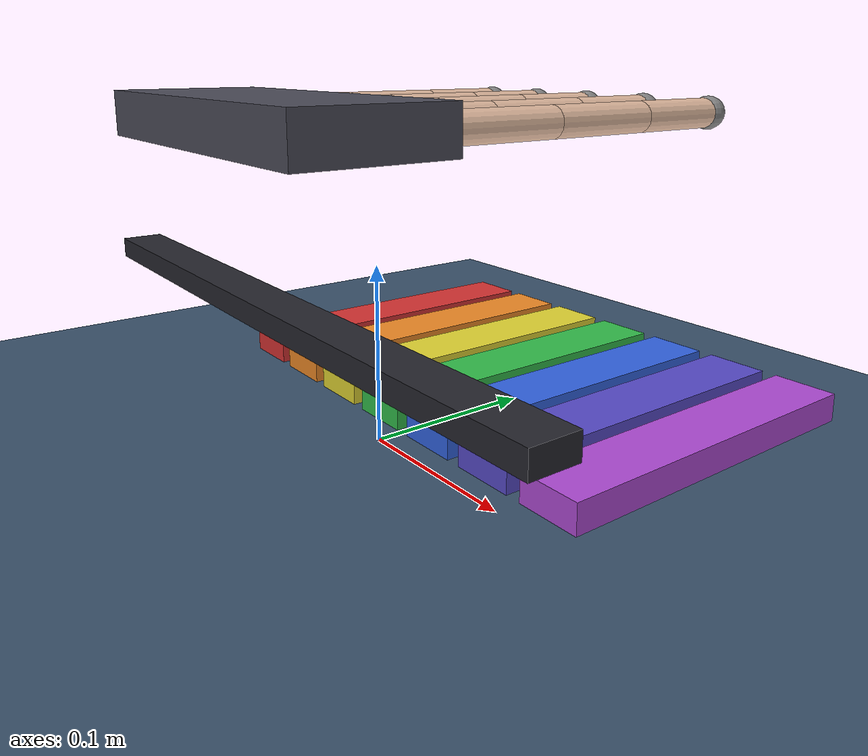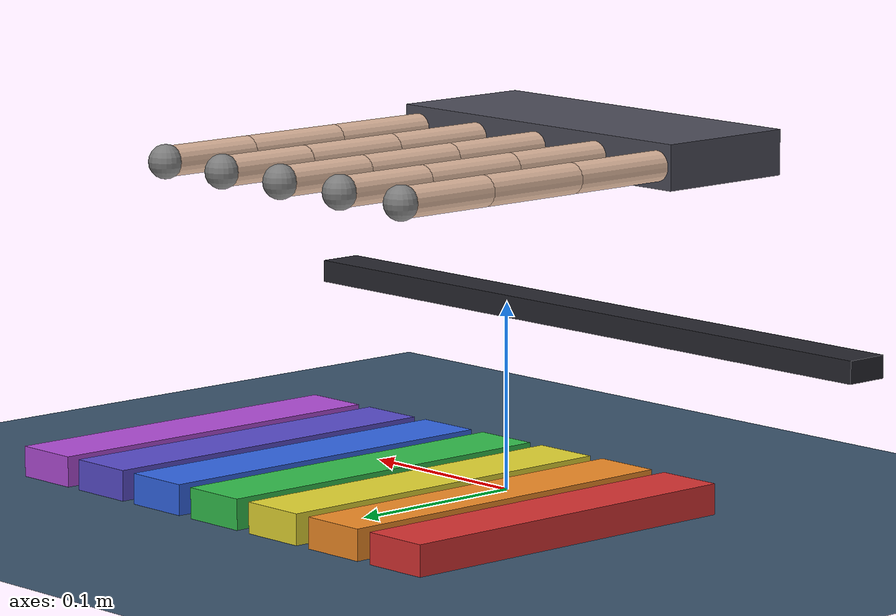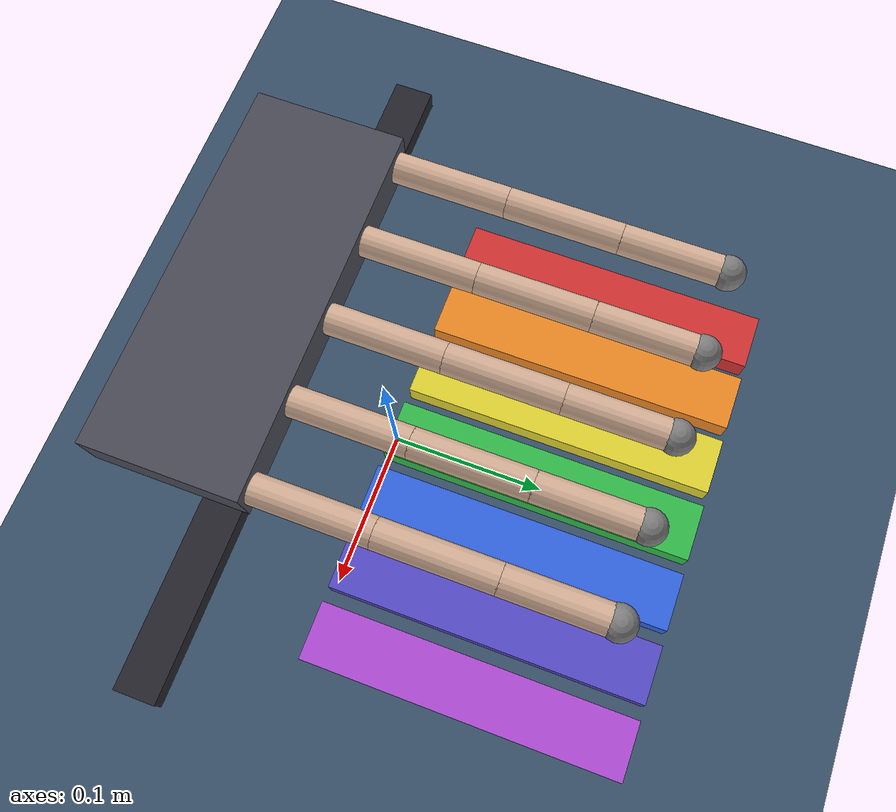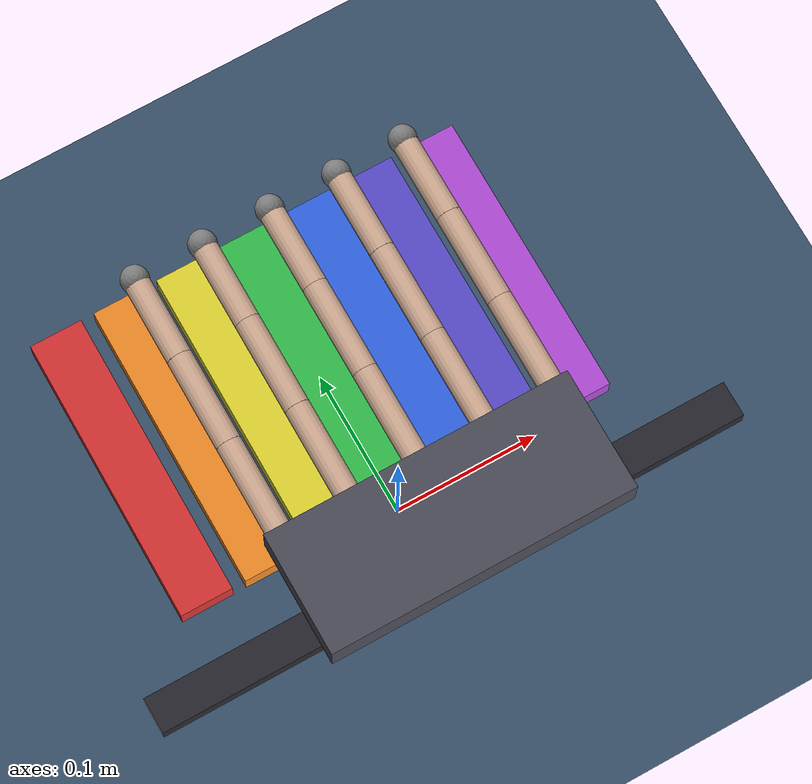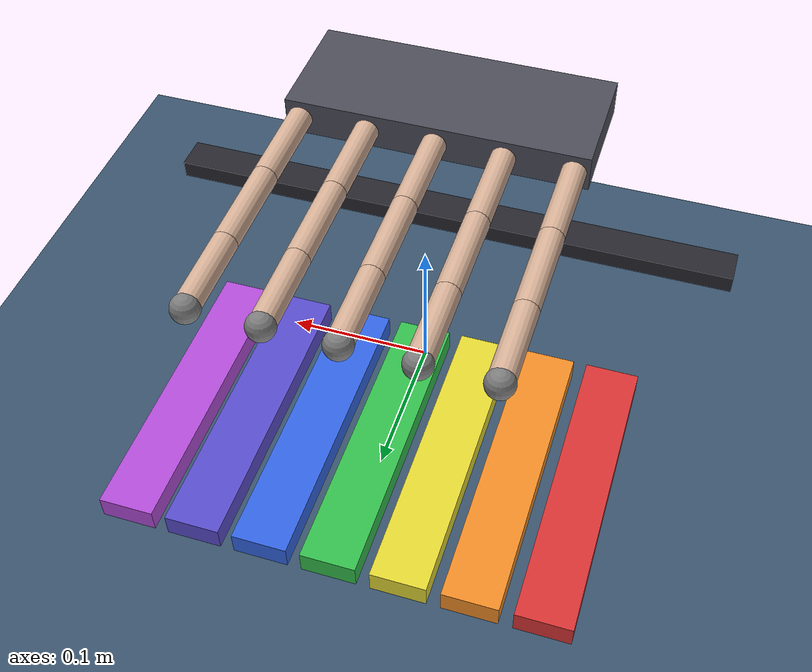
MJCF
<mujoco model="hand_on_piano_v2">
  <compiler angle="radian" autolimits="true"/>

  <option gravity="0 0 -9.81" timestep="0.002" integrator="implicitfast"/>

  <visual>
    <headlight diffuse="0.4 0.4 0.4" ambient="0.3 0.3 0.3"/>
    <global azimuth="120" elevation="-20" offwidth="1280" offheight="720"/>
  </visual>

  <default>
    <!-- finger phalanx links -->
    <default class="phalanx">
      <geom type="capsule" size="0.008" rgba="0.85 0.7 0.6 1"
            friction="1.2 0.02 0.001" condim="4"/>
      <joint type="hinge" axis="1 0 0" range="-1.7 0.3"
             damping="0.05" stiffness="0.3" armature="0.001"/>
    </default>
    <!-- finger position actuators -->
    <default class="finger_act">
      <position kp="3" ctrlrange="-1.7 0.3"/>
    </default>
    <!-- piano keys: hinge that pivots down about its back edge, spring-return -->
    <default class="key">
      <joint type="hinge" axis="1 0 0" pos="0 0 0"
             range="-0.12 0.0" stiffness="40" damping="1.2" armature="0.002"/>
      <geom type="box" friction="1.2 0.02 0.001" condim="4"/>
    </default>
  </default>

  <asset>
    <texture name="grid" type="2d" builtin="checker"
             rgb1="0.2 0.3 0.4" rgb2="0.25 0.35 0.45"
             width="512" height="512"/>
    <material name="grid" texture="grid" texrepeat="8 8"
              reflectance="0.2"/>
    <material name="palm_mat" rgba="0.3 0.3 0.35 1"/>
    <material name="rail_mat" rgba="0.15 0.15 0.18 1"/>
  </asset>

  <worldbody>
    <light name="sun" directional="true" diffuse="0.8 0.8 0.8"
           pos="0 -0.5 1.5" dir="0 0.3 -1"/>

    <camera name="overview" pos="0 0.74 0.5" fovy="58"
            xyaxes="-1 0 0 0 -0.5 0.866"/>

    <geom name="floor" type="plane" size="3 3 0.1" material="grid"/>

    <!-- A thin static rail behind the keys, purely to read as the slide track
         the wrist carriage travels along (visual context for the prismatic
         joint). -->
    <geom name="slide_rail" type="box" pos="0 -0.06 0.085"
          size="0.20 0.012 0.006" material="rail_mat"/>

    <!-- =============== PIANO KEYBOARD (7 keys) =============== -->
    <body name="keyboard" pos="0 0 0">
      <!-- key0 C  red -->
      <body name="key0" pos="-0.135 0 0.02">
        <joint name="key0_joint" class="key"/>
        <geom name="key0_geom" class="key" pos="0 0.1 0" size="0.018 0.1 0.008" rgba="0.85 0.20 0.20 1"/>
        <site name="key0_touch" type="box" pos="0 0.1 0.012" size="0.018 0.1 0.005" rgba="0 0 0 0"/>
      </body>
      <!-- key1 D  orange -->
      <body name="key1" pos="-0.090 0 0.02">
        <joint name="key1_joint" class="key"/>
        <geom name="key1_geom" class="key" pos="0 0.1 0" size="0.018 0.1 0.008" rgba="0.95 0.55 0.15 1"/>
        <site name="key1_touch" type="box" pos="0 0.1 0.012" size="0.018 0.1 0.005" rgba="0 0 0 0"/>
      </body>
      <!-- key2 E  yellow -->
      <body name="key2" pos="-0.045 0 0.02">
        <joint name="key2_joint" class="key"/>
        <geom name="key2_geom" class="key" pos="0 0.1 0" size="0.018 0.1 0.008" rgba="0.90 0.85 0.20 1"/>
        <site name="key2_touch" type="box" pos="0 0.1 0.012" size="0.018 0.1 0.005" rgba="0 0 0 0"/>
      </body>
      <!-- key3 F  green -->
      <body name="key3" pos="0.000 0 0.02">
        <joint name="key3_joint" class="key"/>
        <geom name="key3_geom" class="key" pos="0 0.1 0" size="0.018 0.1 0.008" rgba="0.20 0.75 0.30 1"/>
        <site name="key3_touch" type="box" pos="0 0.1 0.012" size="0.018 0.1 0.005" rgba="0 0 0 0"/>
      </body>
      <!-- key4 G  blue -->
      <body name="key4" pos="0.045 0 0.02">
        <joint name="key4_joint" class="key"/>
        <geom name="key4_geom" class="key" pos="0 0.1 0" size="0.018 0.1 0.008" rgba="0.20 0.40 0.90 1"/>
        <site name="key4_touch" type="box" pos="0 0.1 0.012" size="0.018 0.1 0.005" rgba="0 0 0 0"/>
      </body>
      <!-- key5 A  indigo -->
      <body name="key5" pos="0.090 0 0.02">
        <joint name="key5_joint" class="key"/>
        <geom name="key5_geom" class="key" pos="0 0.1 0" size="0.018 0.1 0.008" rgba="0.35 0.30 0.80 1"/>
        <site name="key5_touch" type="box" pos="0 0.1 0.012" size="0.018 0.1 0.005" rgba="0 0 0 0"/>
      </body>
      <!-- key6 B  violet -->
      <body name="key6" pos="0.135 0 0.02">
        <joint name="key6_joint" class="key"/>
        <geom name="key6_geom" class="key" pos="0 0.1 0" size="0.018 0.1 0.008" rgba="0.70 0.30 0.85 1"/>
        <site name="key6_touch" type="box" pos="0 0.1 0.012" size="0.018 0.1 0.005" rgba="0 0 0 0"/>
      </body>
    </body>

    <!-- =============== DEXTEROUS HAND ON A SLIDING WRIST =============== -->
    <body name="carriage" pos="0 -0.06 0.18">
      <joint name="wrist_slide" type="slide" axis="1 0 0" range="-0.18 0.18"
             damping="6" armature="0.01"/>
      <geom name="palm_geom" type="box" size="0.10 0.04 0.012" material="palm_mat"/>

      <!-- finger 1 (home over key1) -->
      <body name="f1_prox" pos="-0.090 0.04 0">
        <joint name="f1_j1" class="phalanx"/>
        <geom class="phalanx" fromto="0 0 0 0 0.06 0"/>
        <body name="f1_mid" pos="0 0.06 0">
          <joint name="f1_j2" class="phalanx"/>
          <geom class="phalanx" fromto="0 0 0 0 0.06 0"/>
          <body name="f1_dist" pos="0 0.06 0">
            <joint name="f1_j3" class="phalanx"/>
            <geom class="phalanx" fromto="0 0 0 0 0.055 0"/>
            <site name="f1_tip" pos="0 0.055 0" size="0.009"/>
          </body>
        </body>
      </body>

      <!-- finger 2 (home over key2) -->
      <body name="f2_prox" pos="-0.045 0.04 0">
        <joint name="f2_j1" class="phalanx"/>
        <geom class="phalanx" fromto="0 0 0 0 0.06 0"/>
        <body name="f2_mid" pos="0 0.06 0">
          <joint name="f2_j2" class="phalanx"/>
          <geom class="phalanx" fromto="0 0 0 0 0.06 0"/>
          <body name="f2_dist" pos="0 0.06 0">
            <joint name="f2_j3" class="phalanx"/>
            <geom class="phalanx" fromto="0 0 0 0 0.055 0"/>
            <site name="f2_tip" pos="0 0.055 0" size="0.009"/>
          </body>
        </body>
      </body>

      <!-- finger 3 (home over key3, center) -->
      <body name="f3_prox" pos="0.000 0.04 0">
        <joint name="f3_j1" class="phalanx"/>
        <geom class="phalanx" fromto="0 0 0 0 0.06 0"/>
        <body name="f3_mid" pos="0 0.06 0">
          <joint name="f3_j2" class="phalanx"/>
          <geom class="phalanx" fromto="0 0 0 0 0.06 0"/>
          <body name="f3_dist" pos="0 0.06 0">
            <joint name="f3_j3" class="phalanx"/>
            <geom class="phalanx" fromto="0 0 0 0 0.055 0"/>
            <site name="f3_tip" pos="0 0.055 0" size="0.009"/>
          </body>
        </body>
      </body>

      <!-- finger 4 (home over key4) -->
      <body name="f4_prox" pos="0.045 0.04 0">
        <joint name="f4_j1" class="phalanx"/>
        <geom class="phalanx" fromto="0 0 0 0 0.06 0"/>
        <body name="f4_mid" pos="0 0.06 0">
          <joint name="f4_j2" class="phalanx"/>
          <geom class="phalanx" fromto="0 0 0 0 0.06 0"/>
          <body name="f4_dist" pos="0 0.06 0">
            <joint name="f4_j3" class="phalanx"/>
            <geom class="phalanx" fromto="0 0 0 0 0.055 0"/>
            <site name="f4_tip" pos="0 0.055 0" size="0.009"/>
          </body>
        </body>
      </body>

      <!-- finger 5 (home over key5) -->
      <body name="f5_prox" pos="0.090 0.04 0">
        <joint name="f5_j1" class="phalanx"/>
        <geom class="phalanx" fromto="0 0 0 0 0.06 0"/>
        <body name="f5_mid" pos="0 0.06 0">
          <joint name="f5_j2" class="phalanx"/>
          <geom class="phalanx" fromto="0 0 0 0 0.06 0"/>
          <body name="f5_dist" pos="0 0.06 0">
            <joint name="f5_j3" class="phalanx"/>
            <geom class="phalanx" fromto="0 0 0 0 0.055 0"/>
            <site name="f5_tip" pos="0 0.055 0" size="0.009"/>
          </body>
        </body>
      </body>
    </body>
  </worldbody>

  <tendon>
    <fixed name="f1_flexor"><joint joint="f1_j2" coef="1.0"/><joint joint="f1_j3" coef="1.0"/></fixed>
    <fixed name="f2_flexor"><joint joint="f2_j2" coef="1.0"/><joint joint="f2_j3" coef="1.0"/></fixed>
    <fixed name="f3_flexor"><joint joint="f3_j2" coef="1.0"/><joint joint="f3_j3" coef="1.0"/></fixed>
    <fixed name="f4_flexor"><joint joint="f4_j2" coef="1.0"/><joint joint="f4_j3" coef="1.0"/></fixed>
    <fixed name="f5_flexor"><joint joint="f5_j2" coef="1.0"/><joint joint="f5_j3" coef="1.0"/></fixed>
  </tendon>

  <!-- 15 finger position actuators (one per finger joint) + 1 wrist-slide
       position actuator (16 actuated DOF total). -->
  <actuator>
    <position name="f1_j1_act" joint="f1_j1" class="finger_act"/>
    <position name="f1_j2_act" joint="f1_j2" class="finger_act"/>
    <position name="f1_j3_act" joint="f1_j3" class="finger_act"/>

    <position name="f2_j1_act" joint="f2_j1" class="finger_act"/>
    <position name="f2_j2_act" joint="f2_j2" class="finger_act"/>
    <position name="f2_j3_act" joint="f2_j3" class="finger_act"/>

    <position name="f3_j1_act" joint="f3_j1" class="finger_act"/>
    <position name="f3_j2_act" joint="f3_j2" class="finger_act"/>
    <position name="f3_j3_act" joint="f3_j3" class="finger_act"/>

    <position name="f4_j1_act" joint="f4_j1" class="finger_act"/>
    <position name="f4_j2_act" joint="f4_j2" class="finger_act"/>
    <position name="f4_j3_act" joint="f4_j3" class="finger_act"/>

    <position name="f5_j1_act" joint="f5_j1" class="finger_act"/>
    <position name="f5_j2_act" joint="f5_j2" class="finger_act"/>
    <position name="f5_j3_act" joint="f5_j3" class="finger_act"/>

    <!-- wrist slide: higher kp so it tracks the commanded sideways target -->
    <position name="wrist_act" joint="wrist_slide" kp="120" ctrlrange="-0.18 0.18"/>
  </actuator>

  <sensor>
    <touch name="key0_sensor" site="key0_touch"/>
    <touch name="key1_sensor" site="key1_touch"/>
    <touch name="key2_sensor" site="key2_touch"/>
    <touch name="key3_sensor" site="key3_touch"/>
    <touch name="key4_sensor" site="key4_touch"/>
    <touch name="key5_sensor" site="key5_touch"/>
    <touch name="key6_sensor" site="key6_touch"/>

    <jointpos name="wrist_pos" joint="wrist_slide"/>

    <jointpos name="f1_j1_pos" joint="f1_j1"/>
    <jointpos name="f2_j1_pos" joint="f2_j1"/>
    <jointpos name="f3_j1_pos" joint="f3_j1"/>
    <jointpos name="f4_j1_pos" joint="f4_j1"/>
    <jointpos name="f5_j1_pos" joint="f5_j1"/>

    <tendonpos name="f1_flexor_pos" tendon="f1_flexor"/>
    <tendonpos name="f2_flexor_pos" tendon="f2_flexor"/>
    <tendonpos name="f3_flexor_pos" tendon="f3_flexor"/>
    <tendonpos name="f4_flexor_pos" tendon="f4_flexor"/>
    <tendonpos name="f5_flexor_pos" tendon="f5_flexor"/>
  </sensor>
</mujoco>
